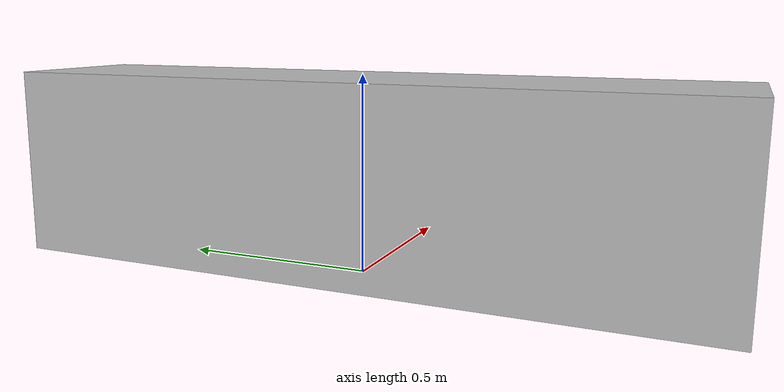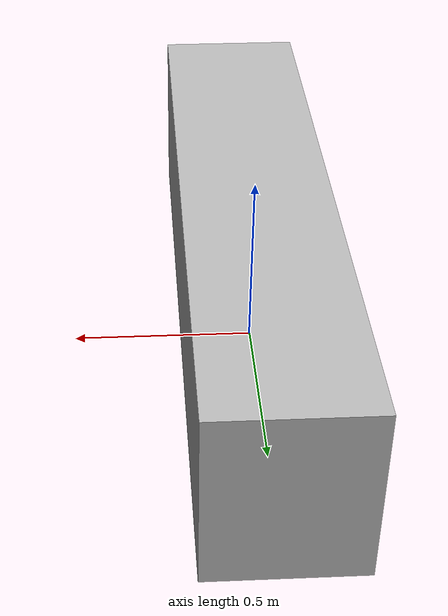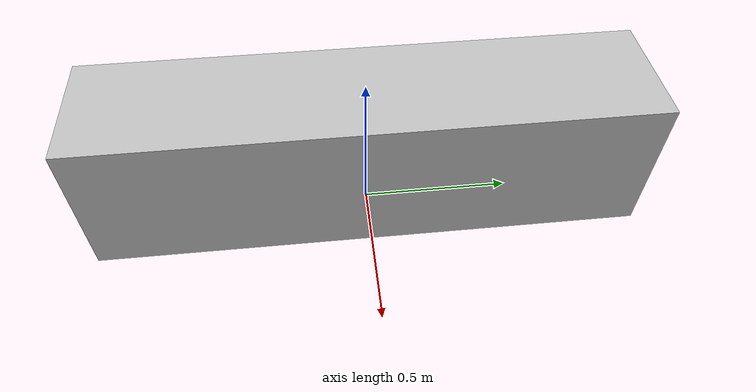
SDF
<?xml version="1.0"?>
<sdf version="1.6">
  <model name="reo2016/tv_stand">
    <link name="1_link">
      <collision name="1_col">
        <geometry>
          <box>
            <size>0.4 1.8 0.485</size>
          </box>
        </geometry>
      </collision>
      <visual name="1_vis">
        <geometry>
          <box>
            <size>0.4 1.8 0.485</size>
          </box>
        </geometry>
      </visual>
      <pose>0.0 0.0 0.2525 0 0 0</pose>
    </link>
    <link name="on_top_of">
      <virtual_volume name="on_top_of_vv">
        <geometry>
          <box>
            <size>0.4 1.8 0.25</size>
          </box>
        </geometry>
        <pose>0.0 0.0 0.65 0 0 0</pose>
      </virtual_volume>
    </link>
    <link name="on_top_of_left">
      <virtual_volume name="on_top_of_left_vv">
        <geometry>
          <box>
            <size>0.4 0.9 0.25</size>
          </box>
        </geometry>
        <pose>0.0 -0.45 0.65 0 0 0</pose>
      </virtual_volume>
    </link>
    <link name="on_top_of_right">
      <virtual_volume name="on_top_of_right_vv">
        <geometry>
          <box>
            <size>0.4 0.9 0.25</size>
          </box>
        </geometry>
        <pose>0.0 0.45 0.65 0 0 0</pose>
      </virtual_volume>
    </link>
    <link name="in_front_of">
      <virtual_volume name="in_front_of_vv">
        <geometry>
          <box>
            <size>0.2 0.5 0.01</size>
          </box>
        </geometry>
        <pose>-0.9 0.0 0.005 0 0 0</pose>
      </virtual_volume>
    </link>
    <static>true</static>
  </model>
</sdf>
